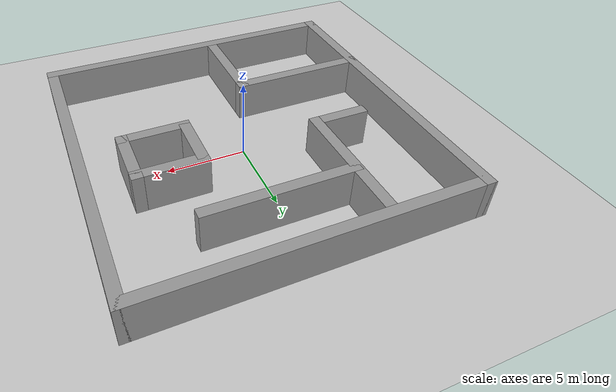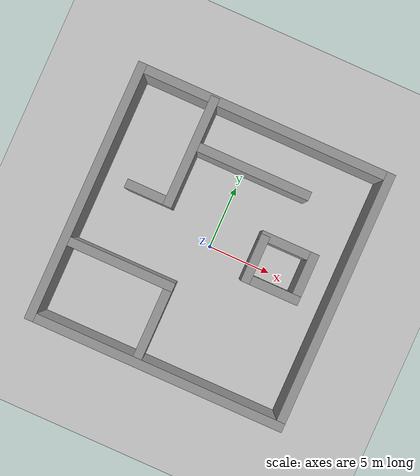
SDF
<sdf version="1.7">
 <world name="default">
  <light name="sun" type="directional">
   <pose>0 0 10 0 -0 0</pose>
   <diffuse>0.8 0.8 0.8 1</diffuse>
   <specular>0.2 0.2 0.2 1</specular>
   <attenuation>
    <range>1000</range>
    <constant>0.9</constant>
    <linear>0.01</linear>
    <quadratic>0.001</quadratic>
   </attenuation>
   <direction>-0.5 0.1 -0.9</direction>
   <spot><inner_angle>0</inner_angle><outer_angle>0</outer_angle><falloff>0</falloff></spot>
  </light>
  <model name="ground_plane">
   <static>1</static>
   <link name="link">
    <collision name="collision">
     <geometry><plane><normal>0 0 1</normal><size>100 100</size></plane></geometry>
     <surface><friction><ode><mu>100</mu><mu2>50</mu2></ode></friction></surface>
    </collision>
    <visual name="visual">
     <cast_shadows>0</cast_shadows>
     <geometry><plane><normal>0 0 1</normal><size>100 100</size></plane></geometry>
     <material>
      <script><uri>file://media/materials/scripts/gazebo.material</uri><name>Gazebo/Grey</name></script>
     </material>
    </visual>
   </link>
  </model>
  <gravity>0 0 -9.8</gravity>
  <magnetic_field>6e-06 2.3e-05 -4.2e-05</magnetic_field>
  <atmosphere type="adiabatic"/>
  <physics type="ode">
   <max_step_size>0.001</max_step_size>
   <real_time_factor>1</real_time_factor>
   <real_time_update_rate>1000</real_time_update_rate>
  </physics>
  <scene><ambient>0.4 0.4 0.4 1</ambient><background>0.7 0.7 0.7 1</background><shadows>1</shadows></scene>
  <spherical_coordinates>
   <surface_model>EARTH_WGS84</surface_model>
   <latitude_deg>0</latitude_deg>
   <longitude_deg>0</longitude_deg>
   <elevation>0</elevation>
   <heading_deg>0</heading_deg>
  </spherical_coordinates>
  <model name="demo04">
   <pose>0.011547 0.011545 0 0 -0 0</pose>
   <link name="Wall_0">
    <collision name="Wall_0_Collision">
     <geometry><box><size>20.7 0.7 2.5</size></box></geometry>
     <pose>0 0 1.25 0 -0 0</pose>
    </collision>
    <visual name="Wall_0_Visual">
     <pose>0 0 1.25 0 -0 0</pose>
     <geometry><box><size>20.7 0.7 2.5</size></box></geometry>
     <material>
      <script><uri>file://media/materials/scripts/gazebo.material</uri><name>Gazebo/Grey</name></script>
      <ambient>1 1 1 1</ambient>
     </material>
     <meta><layer>0</layer></meta>
    </visual>
    <pose>-10 0 0 0 -0 1.5708</pose>
   </link>
   <link name="Wall_11">
    <collision name="Wall_11_Collision">
     <geometry><box><size>3.80024 0.7 2.5</size></box></geometry>
     <pose>0 0 1.25 0 -0 0</pose>
    </collision>
    <visual name="Wall_11_Visual">
     <pose>0 0 1.25 0 -0 0</pose>
     <geometry><box><size>3.80024 0.7 2.5</size></box></geometry>
     <material>
      <script><uri>file://media/materials/scripts/gazebo.material</uri><name>Gazebo/Grey</name></script>
      <ambient>1 1 1 1</ambient>
     </material>
     <meta><layer>0</layer></meta>
    </visual>
    <pose>3.416 0.542 0 0 -0 -1.5708</pose>
   </link>
   <link name="Wall_16">
    <collision name="Wall_16_Collision">
     <geometry><box><size>4.55 0.7 2.5</size></box></geometry>
     <pose>0 0 1.25 0 -0 0</pose>
    </collision>
    <visual name="Wall_16_Visual">
     <pose>0 0 1.25 0 -0 0</pose>
     <geometry><box><size>4.55 0.7 2.5</size></box></geometry>
     <material>
      <script><uri>file://media/materials/scripts/gazebo.material</uri><name>Gazebo/Grey</name></script>
      <ambient>1 1 1 1</ambient>
     </material>
     <meta><layer>0</layer></meta>
    </visual>
    <pose>5.341 -1.008 0 0 -0 0</pose>
   </link>
   <link name="Wall_17">
    <collision name="Wall_17_Collision">
     <geometry><box><size>4.05 0.7 2.5</size></box></geometry>
     <pose>0 0 1.25 0 -0 0</pose>
    </collision>
    <visual name="Wall_17_Visual">
     <pose>0 0 1.25 0 -0 0</pose>
     <geometry><box><size>4.05 0.7 2.5</size></box></geometry>
     <material>
      <script><uri>file://media/materials/scripts/gazebo.material</uri><name>Gazebo/Grey</name></script>
      <ambient>1 1 1 1</ambient>
     </material>
     <meta><layer>0</layer></meta>
    </visual>
    <pose>7.266 0.667 0 0 -0 1.5708</pose>
   </link>
   <link name="Wall_18">
    <collision name="Wall_18_Collision">
     <geometry><box><size>4.55 0.7 2.5</size></box></geometry>
     <pose>0 0 1.25 0 -0 0</pose>
    </collision>
    <visual name="Wall_18_Visual">
     <pose>0 0 1.25 0 -0 0</pose>
     <geometry><box><size>4.55 0.7 2.5</size></box></geometry>
     <material>
      <script><uri>file://media/materials/scripts/gazebo.material</uri><name>Gazebo/Grey</name></script>
      <ambient>1 1 1 1</ambient>
     </material>
     <meta><layer>0</layer></meta>
    </visual>
    <pose>5.341 2.342 0 0 -0 3.14159</pose>
   </link>
   <link name="Wall_2">
    <collision name="Wall_2_Collision">
     <geometry><box><size>20.7 0.7 2.5</size></box></geometry>
     <pose>0 0 1.25 0 -0 0</pose>
    </collision>
    <visual name="Wall_2_Visual">
     <pose>0 0 1.25 0 -0 0</pose>
     <geometry><box><size>20.7 0.7 2.5</size></box></geometry>
     <material>
      <script><uri>file://media/materials/scripts/gazebo.material</uri><name>Gazebo/Grey</name></script>
      <ambient>1 1 1 1</ambient>
     </material>
     <meta><layer>0</layer></meta>
    </visual>
    <pose>0 -10 0 0 -0 0</pose>
   </link>
   <link name="Wall_20">
    <collision name="Wall_20_Collision">
     <geometry><box><size>8.8 0.7 2.5</size></box></geometry>
     <pose>0 0 1.25 0 -0 0</pose>
    </collision>
    <visual name="Wall_20_Visual">
     <pose>0 0 1.25 0 -0 0</pose>
     <geometry><box><size>8.8 0.7 2.5</size></box></geometry>
     <material>
      <script><uri>file://media/materials/scripts/gazebo.material</uri><name>Gazebo/Grey</name></script>
      <ambient>1 1 1 1</ambient>
     </material>
     <meta><layer>0</layer></meta>
    </visual>
    <pose>-4.102 5.823 0 0 -0 -1.5708</pose>
   </link>
   <link name="Wall_21">
    <collision name="Wall_21_Collision">
     <geometry><box><size>3.79981 0.7 2.5</size></box></geometry>
     <pose>0 0 1.25 0 -0 0</pose>
    </collision>
    <visual name="Wall_21_Visual">
     <pose>0 0 1.25 0 -0 0</pose>
     <geometry><box><size>3.79981 0.7 2.5</size></box></geometry>
     <material>
      <script><uri>file://media/materials/scripts/gazebo.material</uri><name>Gazebo/Grey</name></script>
      <ambient>1 1 1 1</ambient>
     </material>
     <meta><layer>0</layer></meta>
    </visual>
    <pose>-5.652 1.773 0 0 -0 3.14159</pose>
   </link>
   <link name="Wall_25">
    <collision name="Wall_25_Collision">
     <geometry><box><size>9.55 0.7 2.5</size></box></geometry>
     <pose>0 0 1.25 0 -0 0</pose>
    </collision>
    <visual name="Wall_25_Visual">
     <pose>0 0 1.25 0 -0 0</pose>
     <geometry><box><size>9.55 0.7 2.5</size></box></geometry>
     <material>
      <script><uri>file://media/materials/scripts/gazebo.material</uri><name>Gazebo/Grey</name></script>
      <ambient>1 1 1 1</ambient>
     </material>
     <meta><layer>0</layer></meta>
    </visual>
    <pose>0.43463 6.356 0 0 -0 0</pose>
   </link>
   <link name="Wall_4">
    <collision name="Wall_4_Collision">
     <geometry><box><size>20.7 0.7 2.5</size></box></geometry>
     <pose>0 0 1.25 0 -0 0</pose>
    </collision>
    <visual name="Wall_4_Visual">
     <pose>0 0 1.25 0 -0 0</pose>
     <geometry><box><size>20.7 0.7 2.5</size></box></geometry>
     <material>
      <script><uri>file://media/materials/scripts/gazebo.material</uri><name>Gazebo/Grey</name></script>
      <ambient>1 1 1 1</ambient>
     </material>
     <meta><layer>0</layer></meta>
    </visual>
    <pose>10 0 0 0 -0 1.5708</pose>
   </link>
   <link name="Wall_6">
    <collision name="Wall_6_Collision">
     <geometry><box><size>20.7 0.7 2.5</size></box></geometry>
     <pose>0 0 1.25 0 -0 0</pose>
    </collision>
    <visual name="Wall_6_Visual">
     <pose>0 0 1.25 0 -0 0</pose>
     <geometry><box><size>20.7 0.7 2.5</size></box></geometry>
     <material>
      <script><uri>file://media/materials/scripts/gazebo.material</uri><name>Gazebo/Grey</name></script>
      <ambient>1 1 1 1</ambient>
     </material>
     <meta><layer>0</layer></meta>
    </visual>
    <pose>0 10 0 0 -0 0</pose>
   </link>
   <link name="Wall_8">
    <collision name="Wall_8_Collision">
     <geometry><box><size>9.05004 0.7 2.5</size></box></geometry>
     <pose>0 0 1.25 0 -0 0</pose>
    </collision>
    <visual name="Wall_8_Visual">
     <pose>0 0 1.25 0 -0 0</pose>
     <geometry><box><size>9.05004 0.7 2.5</size></box></geometry>
     <material>
      <script><uri>file://media/materials/scripts/gazebo.material</uri><name>Gazebo/Grey</name></script>
      <ambient>1 1 1 1</ambient>
     </material>
     <meta><layer>0</layer></meta>
    </visual>
    <pose>-5.73 -3.843 0 0 -0 0</pose>
   </link>
   <link name="Wall_9">
    <collision name="Wall_9_Collision">
     <geometry><box><size>6.54989 0.7 2.5</size></box></geometry>
     <pose>0 0 1.25 0 -0 0</pose>
    </collision>
    <visual name="Wall_9_Visual">
     <pose>0 0 1.25 0 -0 0</pose>
     <geometry><box><size>6.54989 0.7 2.5</size></box></geometry>
     <material>
      <script><uri>file://media/materials/scripts/gazebo.material</uri><name>Gazebo/Grey</name></script>
      <ambient>1 1 1 1</ambient>
     </material>
     <meta><layer>0</layer></meta>
    </visual>
    <pose>-1.555 -6.768 0 0 -0 -1.5708</pose>
   </link>
   <static>1</static>
  </model>
 </world>
</sdf>
